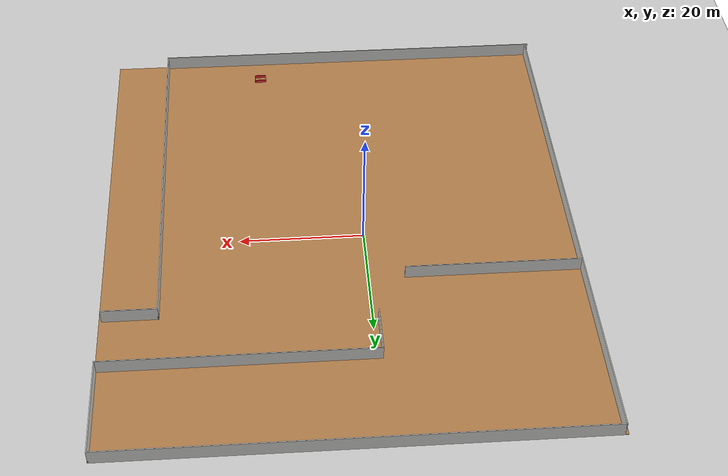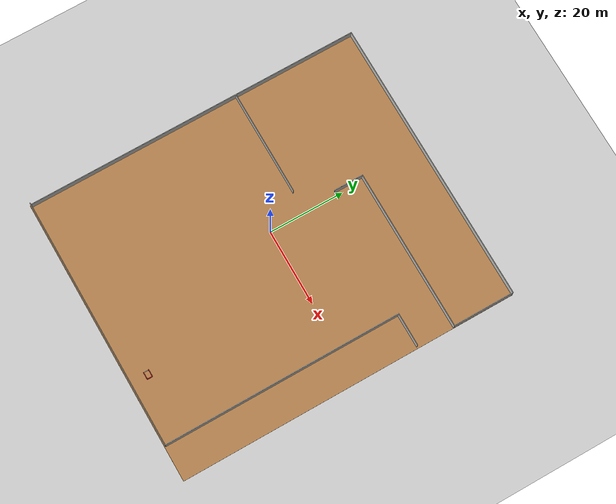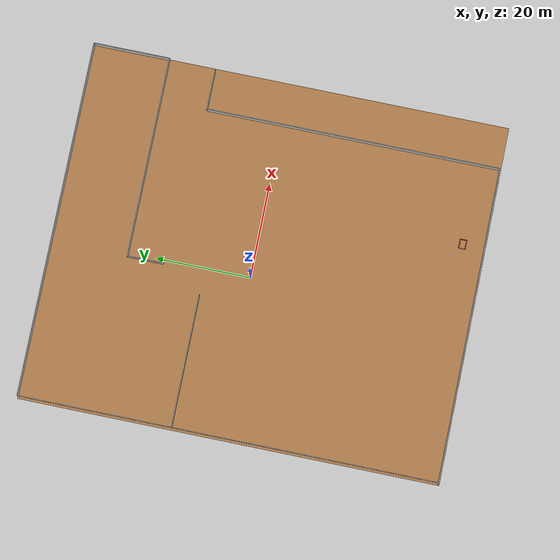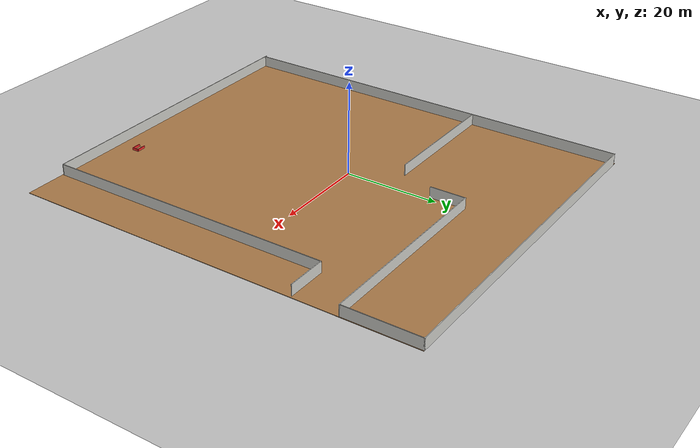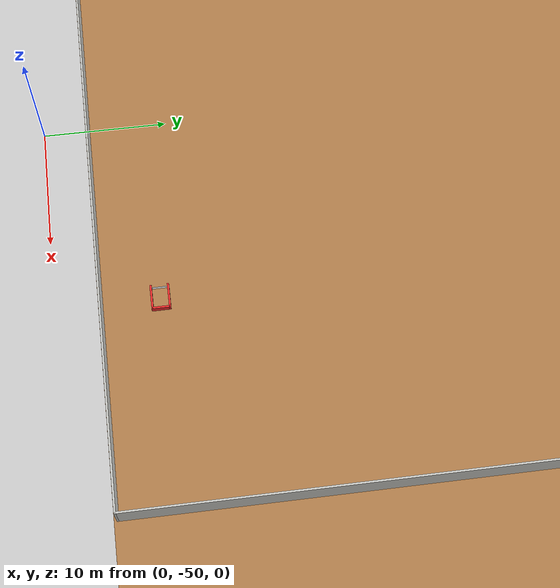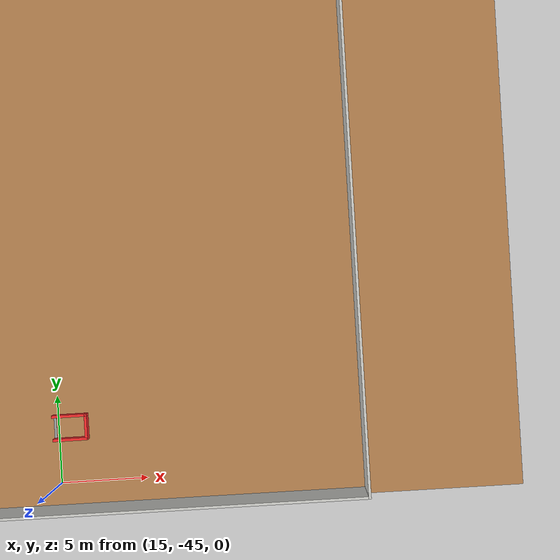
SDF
<sdf version="1.6">
 <world name="default">
  <light name="sun" type="directional">
   <pose>0 0 10 0 -0 0</pose>
   <diffuse>0.8 0.8 0.8 1</diffuse>
   <specular>0.2 0.2 0.2 1</specular>
   <attenuation>
    <range>1000</range>
    <constant>0.9</constant>
    <linear>0.01</linear>
    <quadratic>0.001</quadratic>
   </attenuation>
   <direction>-0.5 0.1 -0.9</direction>
  </light>
  <model name="ground_plane">
   <static>1</static>
   <link name="link">
    <collision name="collision">
     <geometry><plane><normal>0 0 1</normal><size>100 100</size></plane></geometry>
     <surface><friction><ode><mu>100</mu><mu2>50</mu2></ode></friction></surface>
    </collision>
    <visual name="visual">
     <cast_shadows>0</cast_shadows>
     <geometry><plane><normal>0 0 1</normal><size>100 100</size></plane></geometry>
     <material>
      <script><uri>file://media/materials/scripts/gazebo.material</uri><name>Gazebo/Grey</name></script>
     </material>
    </visual>
   </link>
  </model>
  <gravity>0 0 -9.8</gravity>
  <magnetic_field>6e-06 2.3e-05 -4.2e-05</magnetic_field>
  <atmosphere type="adiabatic"/>
  <physics name="default_physics" default="0" type="ode">
   <max_step_size>0.001</max_step_size>
   <real_time_factor>1</real_time_factor>
   <real_time_update_rate>1000</real_time_update_rate>
  </physics>
  <scene><ambient>0.4 0.4 0.4 1</ambient><background>0.7 0.7 0.7 1</background><shadows>1</shadows></scene>
  <spherical_coordinates>
   <surface_model>EARTH_WGS84</surface_model>
   <latitude_deg>0</latitude_deg>
   <longitude_deg>0</longitude_deg>
   <elevation>0</elevation>
   <heading_deg>0</heading_deg>
  </spherical_coordinates>
  <model name="Untitled">
   <pose>3.69263 -2.2861 0 0 -0 0</pose>
   <link name="Floor_0">
    <collision name="Floor_0_Collision">
     <geometry><box><size>75.8289 88.67 0.1</size></box></geometry>
     <pose>0 0 0.05 0 -0 0</pose>
    </collision>
    <visual name="Floor_0_Visual">
     <pose>0 0 0.05 0 -0 0</pose>
     <geometry><box><size>75.8289 88.67 0.1</size></box></geometry>
     <material>
      <script><uri>file://media/materials/scripts/gazebo.material</uri><name>Gazebo/Wood</name></script>
      <ambient>0.921569 0.807843 0.615686 1</ambient>
     </material>
     <meta><layer>1</layer></meta>
    </visual>
    <pose>-2e-06 5.2e-05 0.001 0 -0 0</pose>
   </link>
   <link name="Wall_10">
    <collision name="Wall_10_Collision">
     <geometry><box><size>22.25 0.15 0.001</size></box></geometry>
     <pose>0 0 0.0005 0 -0 0</pose>
    </collision>
    <visual name="Wall_10_Visual">
     <pose>0 0 0.0005 0 -0 0</pose>
     <geometry><box><size>22.25 0.15 0.001</size></box></geometry>
     <material>
      <script><uri>file://media/materials/scripts/gazebo.material</uri><name>Gazebo/Grey</name></script>
      <ambient>1 1 1 1</ambient>
     </material>
     <meta><layer>0</layer></meta>
    </visual>
    <pose>37.4644 -24.7999 0 0 -0 1.5708</pose>
   </link>
   <link name="Wall_17">
    <collision name="Wall_17_Collision">
     <geometry><box><size>32.5 0.15 0.001</size></box></geometry>
     <pose>0 0 0.0005 0 -0 0</pose>
    </collision>
    <visual name="Wall_17_Visual">
     <pose>0 0 0.0005 0 -0 0</pose>
     <geometry><box><size>32.5 0.15 0.001</size></box></geometry>
     <material>
      <script><uri>file://media/materials/scripts/gazebo.material</uri><name>Gazebo/Grey</name></script>
      <ambient>1 1 1 1</ambient>
     </material>
     <meta><layer>0</layer></meta>
    </visual>
    <pose>37.4644 2.4251 0 0 -0 1.5708</pose>
   </link>
   <link name="Wall_18">
    <collision name="Wall_18_Collision">
     <geometry><box><size>25.81 0.15 0.001</size></box></geometry>
     <pose>0 0 0.0005 0 -0 0</pose>
    </collision>
    <visual name="Wall_18_Visual">
     <pose>0 0 0.0005 0 -0 0</pose>
     <geometry><box><size>25.81 0.15 0.001</size></box></geometry>
     <material>
      <script><uri>file://media/materials/scripts/gazebo.material</uri><name>Gazebo/Grey</name></script>
      <ambient>1 1 1 1</ambient>
     </material>
     <meta><layer>0</layer></meta>
    </visual>
    <pose>37.6514 31.4286 0 0 -0 1.55622</pose>
   </link>
   <link name="Wall_19">
    <collision name="Wall_19_Collision">
     <geometry><box><size>75.7509 0.15 0.001</size></box></geometry>
     <pose>0 0 0.0005 0 -0 0</pose>
    </collision>
    <visual name="Wall_19_Visual">
     <pose>0 0 0.0005 0 -0 0</pose>
     <geometry><box><size>75.7509 0.15 0.001</size></box></geometry>
     <material>
      <script><uri>file://media/materials/scripts/gazebo.material</uri><name>Gazebo/Grey</name></script>
      <ambient>1 1 1 1</ambient>
     </material>
     <meta><layer>0</layer></meta>
    </visual>
    <pose>0.037867 44.1641 0 0 -0 -3.13913</pose>
   </link>
   <link name="Wall_22">
    <collision name="Wall_22_Collision">
     <geometry><box><size>27.25 0.15 0.001</size></box></geometry>
     <pose>0 0 0.0005 0 -0 0</pose>
    </collision>
    <visual name="Wall_22_Visual">
     <pose>0 0 0.0005 0 -0 0</pose>
     <geometry><box><size>27.25 0.15 0.001</size></box></geometry>
     <material>
      <script><uri>file://media/materials/scripts/gazebo.material</uri><name>Gazebo/Grey</name></script>
      <ambient>1 1 1 1</ambient>
     </material>
     <meta><layer>0</layer></meta>
    </visual>
    <pose>-37.7576 30.2621 0 0 -0 1.56482</pose>
   </link>
   <link name="Wall_24">
    <collision name="Wall_24_Collision">
     <geometry><box><size>29.6058 0.15 0.001</size></box></geometry>
     <pose>0 0 0.0005 0 -0 0</pose>
    </collision>
    <visual name="Wall_24_Visual">
     <pose>0 0 0.0005 0 -0 0</pose>
     <geometry><box><size>29.6058 0.15 0.001</size></box></geometry>
     <material>
      <script><uri>file://media/materials/scripts/gazebo.material</uri><name>Gazebo/Grey</name></script>
      <ambient>1 1 1 1</ambient>
     </material>
     <meta><layer>1</layer></meta>
    </visual>
    <pose>-37.6761 1.9851 0.001 0 -0 -1.55976</pose>
   </link>
   <link name="Wall_25">
    <collision name="Wall_25_Collision">
     <geometry><box><size>26.0005 0.15 0.001</size></box></geometry>
     <pose>0 0 0.0005 0 -0 0</pose>
    </collision>
    <visual name="Wall_25_Visual">
     <pose>0 0 0.0005 0 -0 0</pose>
     <geometry><box><size>26.0005 0.15 0.001</size></box></geometry>
     <material>
      <script><uri>file://media/materials/scripts/gazebo.material</uri><name>Gazebo/Grey</name></script>
      <ambient>1 1 1 1</ambient>
     </material>
     <meta><layer>1</layer></meta>
    </visual>
    <pose>-37.5951 -25.6669 0.001 0 -0 -1.5771</pose>
   </link>
   <link name="Wall_26">
    <collision name="Wall_26_Collision">
     <geometry><box><size>13.5549 0.15 0.001</size></box></geometry>
     <pose>0 0 0.0005 0 -0 0</pose>
    </collision>
    <visual name="Wall_26_Visual">
     <pose>0 0 0.0005 0 -0 0</pose>
     <geometry><box><size>13.5549 0.15 0.001</size></box></geometry>
     <material>
      <script><uri>file://media/materials/scripts/gazebo.material</uri><name>Gazebo/Grey</name></script>
      <ambient>1 1 1 1</ambient>
     </material>
     <meta><layer>1</layer></meta>
    </visual>
    <pose>-31.5956 -41.4104 0.001 0 -0 -0.434018</pose>
   </link>
   <link name="Wall_27">
    <collision name="Wall_27_Collision">
     <geometry><box><size>54.75 0.15 0.001</size></box></geometry>
     <pose>0 0 0.0005 0 -0 0</pose>
    </collision>
    <visual name="Wall_27_Visual">
     <pose>0 0 0.0005 0 -0 0</pose>
     <geometry><box><size>54.75 0.15 0.001</size></box></geometry>
     <material>
      <script><uri>file://media/materials/scripts/gazebo.material</uri><name>Gazebo/Grey</name></script>
      <ambient>1 1 1 1</ambient>
     </material>
     <meta><layer>1</layer></meta>
    </visual>
    <pose>1.78537 -44.2289 0.001 0 -0 0</pose>
   </link>
   <link name="Wall_28">
    <collision name="Wall_28_Collision">
     <geometry><box><size>11.9997 0.15 0.001</size></box></geometry>
     <pose>0 0 0.0005 0 -0 0</pose>
    </collision>
    <visual name="Wall_28_Visual">
     <pose>0 0 0.0005 0 -0 0</pose>
     <geometry><box><size>11.9997 0.15 0.001</size></box></geometry>
     <material>
      <script><uri>file://media/materials/scripts/gazebo.material</uri><name>Gazebo/Grey</name></script>
      <ambient>1 1 1 1</ambient>
     </material>
     <meta><layer>1</layer></meta>
    </visual>
    <pose>33.2749 -40.0394 0.001 0 -0 0.785398</pose>
   </link>
   <link name="Wall_29">
    <collision name="Wall_29_Collision">
     <geometry><box><size>22.25 0.15 0.001</size></box></geometry>
     <pose>0 0 0.0005 0 -0 0</pose>
    </collision>
    <visual name="Wall_29_Visual">
     <pose>0 0 0.0005 0 -0 0</pose>
     <geometry><box><size>22.25 0.15 0.001</size></box></geometry>
     <material>
      <script><uri>file://media/materials/scripts/gazebo.material</uri><name>Gazebo/Grey</name></script>
      <ambient>1 1 1 1</ambient>
     </material>
     <meta><layer>1</layer></meta>
    </visual>
    <pose>37.4644 -24.7999 0.001 0 -0 1.5708</pose>
   </link>
   <link name="Wall_30">
    <collision name="Wall_30_Collision">
     <geometry><box><size>32.5 0.15 0.001</size></box></geometry>
     <pose>0 0 0.0005 0 -0 0</pose>
    </collision>
    <visual name="Wall_30_Visual">
     <pose>0 0 0.0005 0 -0 0</pose>
     <geometry><box><size>32.5 0.15 0.001</size></box></geometry>
     <material>
      <script><uri>file://media/materials/scripts/gazebo.material</uri><name>Gazebo/Grey</name></script>
      <ambient>1 1 1 1</ambient>
     </material>
     <meta><layer>1</layer></meta>
    </visual>
    <pose>37.4644 2.4251 0.001 0 -0 1.5708</pose>
   </link>
   <link name="Wall_31">
    <collision name="Wall_31_Collision">
     <geometry><box><size>25.8097 0.15 0.001</size></box></geometry>
     <pose>0 0 0.0005 0 -0 0</pose>
    </collision>
    <visual name="Wall_31_Visual">
     <pose>0 0 0.0005 0 -0 0</pose>
     <geometry><box><size>25.8097 0.15 0.001</size></box></geometry>
     <material>
      <script><uri>file://media/materials/scripts/gazebo.material</uri><name>Gazebo/Grey</name></script>
      <ambient>1 1 1 1</ambient>
     </material>
     <meta><layer>1</layer></meta>
    </visual>
    <pose>37.6514 31.4286 0.001 0 -0 1.55622</pose>
   </link>
   <link name="Wall_32">
    <collision name="Wall_32_Collision">
     <geometry><box><size>75.7512 0.15 0.001</size></box></geometry>
     <pose>0 0 0.0005 0 -0 0</pose>
    </collision>
    <visual name="Wall_32_Visual">
     <pose>0 0 0.0005 0 -0 0</pose>
     <geometry><box><size>75.7512 0.15 0.001</size></box></geometry>
     <material>
      <script><uri>file://media/materials/scripts/gazebo.material</uri><name>Gazebo/Grey</name></script>
      <ambient>1 1 1 1</ambient>
     </material>
     <meta><layer>1</layer></meta>
    </visual>
    <pose>0.037867 44.1641 0.001 0 -0 -3.13913</pose>
   </link>
   <link name="Wall_33">
    <collision name="Wall_33_Collision">
     <geometry><box><size>27.2505 0.15 0.001</size></box></geometry>
     <pose>0 0 0.0005 0 -0 0</pose>
    </collision>
    <visual name="Wall_33_Visual">
     <pose>0 0 0.0005 0 -0 0</pose>
     <geometry><box><size>27.2505 0.15 0.001</size></box></geometry>
     <material>
      <script><uri>file://media/materials/scripts/gazebo.material</uri><name>Gazebo/Grey</name></script>
      <ambient>1 1 1 1</ambient>
     </material>
     <meta><layer>1</layer></meta>
    </visual>
    <pose>-37.7576 30.2621 0.001 0 -0 1.56482</pose>
   </link>
   <link name="Wall_34">
    <collision name="Wall_34_Collision">
     <geometry><box><size>32.5 0.15 2.5</size></box></geometry>
     <pose>0 0 1.25 0 -0 0</pose>
    </collision>
    <visual name="Wall_34_Visual">
     <pose>0 0 1.25 0 -0 0</pose>
     <geometry><box><size>32.5 0.15 2.5</size></box></geometry>
     <material>
      <script><uri>file://media/materials/scripts/gazebo.material</uri><name>Gazebo/CeilingTiled</name></script>
      <ambient>0.447059 0.623529 0.811765 1</ambient>
     </material>
     <meta><layer>1</layer></meta>
    </visual>
    <pose>-37.3326 28.0851 0.001 0 -0 -1.5708</pose>
   </link>
   <link name="Wall_35">
    <collision name="Wall_35_Collision">
     <geometry><box><size>28 0.15 2.5</size></box></geometry>
     <pose>0 0 1.25 0 -0 0</pose>
    </collision>
    <visual name="Wall_35_Visual">
     <pose>0 0 1.25 0 -0 0</pose>
     <geometry><box><size>28 0.15 2.5</size></box></geometry>
     <material>
      <script><uri>file://media/materials/scripts/gazebo.material</uri><name>Gazebo/CeilingTiled</name></script>
      <ambient>0.447059 0.623529 0.811765 1</ambient>
     </material>
     <meta><layer>1</layer></meta>
    </visual>
    <pose>-23.4076 11.9101 0.001 0 -0 0</pose>
   </link>
   <link name="Wall_37">
    <collision name="Wall_37_Collision">
     <geometry><box><size>75.25 0.15 2.5</size></box></geometry>
     <pose>0 0 1.25 0 -0 0</pose>
    </collision>
    <visual name="Wall_37_Visual">
     <pose>0 0 1.25 0 -0 0</pose>
     <geometry><box><size>75.25 0.15 2.5</size></box></geometry>
     <material>
      <script><uri>file://media/materials/scripts/gazebo.material</uri><name>Gazebo/CeilingTiled</name></script>
      <ambient>0.447059 0.623529 0.811765 1</ambient>
     </material>
     <meta><layer>1</layer></meta>
    </visual>
    <pose>0.217435 44.2601 0.001 0 -0 0</pose>
   </link>
   <link name="Wall_38">
    <collision name="Wall_38_Collision">
     <geometry><box><size>16.25 0.15 2.5</size></box></geometry>
     <pose>0 0 1.25 0 -0 0</pose>
    </collision>
    <visual name="Wall_38_Visual">
     <pose>0 0 1.25 0 -0 0</pose>
     <geometry><box><size>16.25 0.15 2.5</size></box></geometry>
     <material>
      <script><uri>file://media/materials/scripts/gazebo.material</uri><name>Gazebo/CeilingTiled</name></script>
      <ambient>0.447059 0.623529 0.811765 1</ambient>
     </material>
     <meta><layer>1</layer></meta>
    </visual>
    <pose>37.7674 36.2101 0.001 0 -0 -1.5708</pose>
   </link>
   <link name="Wall_39">
    <collision name="Wall_39_Collision">
     <geometry><box><size>42.5 0.15 2.5</size></box></geometry>
     <pose>0 0 1.25 0 -0 0</pose>
    </collision>
    <visual name="Wall_39_Visual">
     <pose>0 0 1.25 0 -0 0</pose>
     <geometry><box><size>42.5 0.15 2.5</size></box></geometry>
     <material>
      <script><uri>file://media/materials/scripts/gazebo.material</uri><name>Gazebo/CeilingTiled</name></script>
      <ambient>0.447059 0.623529 0.811765 1</ambient>
     </material>
     <meta><layer>1</layer></meta>
    </visual>
    <pose>16.5924 28.1601 0.001 0 -0 3.14159</pose>
   </link>
   <link name="Wall_4">
    <collision name="Wall_4_Collision">
     <geometry><box><size>29.6057 0.15 0.001</size></box></geometry>
     <pose>0 0 0.0005 0 -0 0</pose>
    </collision>
    <visual name="Wall_4_Visual">
     <pose>0 0 0.0005 0 -0 0</pose>
     <geometry><box><size>29.6057 0.15 0.001</size></box></geometry>
     <material>
      <script><uri>file://media/materials/scripts/gazebo.material</uri><name>Gazebo/Grey</name></script>
      <ambient>1 1 1 1</ambient>
     </material>
     <meta><layer>0</layer></meta>
    </visual>
    <pose>-37.6761 1.9851 0 0 -0 -1.55976</pose>
   </link>
   <link name="Wall_40">
    <collision name="Wall_40_Collision">
     <geometry><box><size>7.75 0.15 2.5</size></box></geometry>
     <pose>0 0 1.25 0 -0 0</pose>
    </collision>
    <visual name="Wall_40_Visual">
     <pose>0 0 1.25 0 -0 0</pose>
     <geometry><box><size>7.75 0.15 2.5</size></box></geometry>
     <material>
      <script><uri>file://media/materials/scripts/gazebo.material</uri><name>Gazebo/CeilingTiled</name></script>
      <ambient>1 1 1 1</ambient>
     </material>
     <meta><layer>1</layer></meta>
    </visual>
    <pose>-4.58256 24.3601 0.001 0 -0 -1.5708</pose>
   </link>
   <link name="Wall_43">
    <collision name="Wall_43_Collision">
     <geometry><box><size>62.5 0.15 2.5</size></box></geometry>
     <pose>0 0 1.25 0 -0 0</pose>
    </collision>
    <visual name="Wall_43_Visual">
     <pose>0 0 1.25 0 -0 0</pose>
     <geometry><box><size>62.5 0.15 2.5</size></box></geometry>
     <material>
      <script><uri>file://media/materials/scripts/gazebo.material</uri><name>Gazebo/CeilingTiled</name></script>
      <ambient>0.447059 0.623529 0.811765 1</ambient>
     </material>
     <meta><layer>1</layer></meta>
    </visual>
    <pose>28.8511 -12.8639 0.001 0 -0 -1.5708</pose>
   </link>
   <link name="Wall_44">
    <collision name="Wall_44_Collision">
     <geometry><box><size>66.75 0.15 2.5</size></box></geometry>
     <pose>0 0 1.25 0 -0 0</pose>
    </collision>
    <visual name="Wall_44_Visual">
     <pose>0 0 1.25 0 -0 0</pose>
     <geometry><box><size>66.75 0.15 2.5</size></box></geometry>
     <material>
      <script><uri>file://media/materials/scripts/gazebo.material</uri><name>Gazebo/CeilingTiled</name></script>
      <ambient>0.447059 0.623529 0.811765 1</ambient>
     </material>
     <meta><layer>1</layer></meta>
    </visual>
    <pose>-4.44885 -44.0389 0.001 0 -0 3.14159</pose>
   </link>
   <link name="Wall_49">
    <collision name="Wall_49_Collision">
     <geometry><box><size>56 0.15 2.5</size></box></geometry>
     <pose>0 0 1.25 0 -0 0</pose>
    </collision>
    <visual name="Wall_49_Visual">
     <pose>0 0 1.25 0 -0 0</pose>
     <geometry><box><size>56 0.15 2.5</size></box></geometry>
     <material>
      <script><uri>file://media/materials/scripts/gazebo.material</uri><name>Gazebo/CeilingTiled</name></script>
      <ambient>0.447059 0.623529 0.811765 1</ambient>
     </material>
     <meta><layer>1</layer></meta>
    </visual>
    <pose>-37.3326 -16.0149 0.001 0 -0 -1.5708</pose>
   </link>
   <link name="Wall_51">
    <collision name="Wall_51_Collision">
     <geometry><box><size>8.75 0.15 2.5</size></box></geometry>
     <pose>0 0 1.25 0 -0 0</pose>
    </collision>
    <visual name="Wall_51_Visual">
     <pose>0 0 1.25 0 -0 0</pose>
     <geometry><box><size>8.75 0.15 2.5</size></box></geometry>
     <material>
      <script><uri>file://media/materials/scripts/gazebo.material</uri><name>Gazebo/CeilingTiled</name></script>
      <ambient>0.447059 0.623529 0.811765 1</ambient>
     </material>
     <meta><layer>1</layer></meta>
    </visual>
    <pose>33.1511 18.3111 0.001 0 -0 0</pose>
   </link>
   <link name="Wall_6">
    <collision name="Wall_6_Collision">
     <geometry><box><size>26 0.15 0.001</size></box></geometry>
     <pose>0 0 0.0005 0 -0 0</pose>
    </collision>
    <visual name="Wall_6_Visual">
     <pose>0 0 0.0005 0 -0 0</pose>
     <geometry><box><size>26 0.15 0.001</size></box></geometry>
     <material>
      <script><uri>file://media/materials/scripts/gazebo.material</uri><name>Gazebo/Grey</name></script>
      <ambient>1 1 1 1</ambient>
     </material>
     <meta><layer>0</layer></meta>
    </visual>
    <pose>-37.5951 -25.6669 0 0 -0 -1.5771</pose>
   </link>
   <link name="Wall_7">
    <collision name="Wall_7_Collision">
     <geometry><box><size>13.5547 0.15 0.001</size></box></geometry>
     <pose>0 0 0.0005 0 -0 0</pose>
    </collision>
    <visual name="Wall_7_Visual">
     <pose>0 0 0.0005 0 -0 0</pose>
     <geometry><box><size>13.5547 0.15 0.001</size></box></geometry>
     <material>
      <script><uri>file://media/materials/scripts/gazebo.material</uri><name>Gazebo/Grey</name></script>
      <ambient>1 1 1 1</ambient>
     </material>
     <meta><layer>0</layer></meta>
    </visual>
    <pose>-31.5956 -41.4104 0 0 -0 -0.434018</pose>
   </link>
   <link name="Wall_8">
    <collision name="Wall_8_Collision">
     <geometry><box><size>54.75 0.15 0.001</size></box></geometry>
     <pose>0 0 0.0005 0 -0 0</pose>
    </collision>
    <visual name="Wall_8_Visual">
     <pose>0 0 0.0005 0 -0 0</pose>
     <geometry><box><size>54.75 0.15 0.001</size></box></geometry>
     <material>
      <script><uri>file://media/materials/scripts/gazebo.material</uri><name>Gazebo/Grey</name></script>
      <ambient>1 1 1 1</ambient>
     </material>
     <meta><layer>0</layer></meta>
    </visual>
    <pose>1.78537 -44.2289 0 0 -0 0</pose>
   </link>
   <link name="Wall_9">
    <collision name="Wall_9_Collision">
     <geometry><box><size>12 0.15 0.001</size></box></geometry>
     <pose>0 0 0.0005 0 -0 0</pose>
    </collision>
    <visual name="Wall_9_Visual">
     <pose>0 0 0.0005 0 -0 0</pose>
     <geometry><box><size>12 0.15 0.001</size></box></geometry>
     <material>
      <script><uri>file://media/materials/scripts/gazebo.material</uri><name>Gazebo/Grey</name></script>
      <ambient>1 1 1 1</ambient>
     </material>
     <meta><layer>0</layer></meta>
    </visual>
    <pose>33.2749 -40.0394 0 0 -0 0.785398</pose>
   </link>
   <static>1</static>
  </model>
  <model name="Untitled1">
   <pose>15.748 -41.775 0 0 -0 0</pose>
   <link name="Wall_10">
    <collision name="Wall_10_Collision">
     <geometry><box><size>2 0.15 0.6</size></box></geometry>
     <pose>0 0 0.3 0 -0 0</pose>
    </collision>
    <visual name="Wall_10_Visual">
     <pose>0 0 0.3 0 -0 0</pose>
     <geometry><box><size>2 0.15 0.6</size></box></geometry>
     <material>
      <script><uri>file://media/materials/scripts/gazebo.material</uri><name>Gazebo/Grey</name></script>
      <ambient>0.937255 0.160784 0.160784 1</ambient>
     </material>
     <meta><layer>0</layer></meta>
    </visual>
    <pose>-0 -0.675001 0 0 -0 0</pose>
   </link>
   <link name="Wall_11">
    <collision name="Wall_11_Collision">
     <geometry><box><size>1.5 0.15 0.6</size></box></geometry>
     <pose>0 0 0.3 0 -0 0</pose>
    </collision>
    <visual name="Wall_11_Visual">
     <pose>0 0 0.3 0 -0 0</pose>
     <geometry><box><size>1.5 0.15 0.6</size></box></geometry>
     <material>
      <script><uri>file://media/materials/scripts/gazebo.material</uri><name>Gazebo/Grey</name></script>
      <ambient>0.937255 0.160784 0.160784 1</ambient>
     </material>
     <meta><layer>0</layer></meta>
    </visual>
    <pose>0.925 -2e-06 0 0 -0 1.5708</pose>
   </link>
   <link name="Wall_13">
    <collision name="Wall_13_Collision">
     <geometry><box><size>2 0.15 0.6</size></box></geometry>
     <pose>0 0 0.3 0 -0 0</pose>
    </collision>
    <visual name="Wall_13_Visual">
     <pose>0 0 0.3 0 -0 0</pose>
     <geometry><box><size>2 0.15 0.6</size></box></geometry>
     <material>
      <script><uri>file://media/materials/scripts/gazebo.material</uri><name>Gazebo/Grey</name></script>
      <ambient>0.937255 0.160784 0.160784 1</ambient>
     </material>
     <meta><layer>0</layer></meta>
    </visual>
    <pose>-0 0.675001 0 0 -0 3.14159</pose>
   </link>
   <link name="Wall_17">
    <collision name="Wall_17_Collision">
     <geometry><box><size>1.5 0.15 0.103</size></box></geometry>
     <pose>0 0 0.052 0 -0 0</pose>
    </collision>
    <visual name="Wall_17_Visual">
     <pose>0 0 0.052 0 -0 0</pose>
     <geometry><box><size>1.5 0.15 0.103</size></box></geometry>
     <material>
      <script><uri>file://media/materials/scripts/gazebo.material</uri><name>Gazebo/Grey</name></script>
      <ambient>1 1 1 1</ambient>
     </material>
     <meta><layer>0</layer></meta>
    </visual>
    <pose>-0.925001 -2e-06 0 0 -0 -1.5708</pose>
   </link>
   <static>1</static>
  </model>
 </world>
</sdf>
